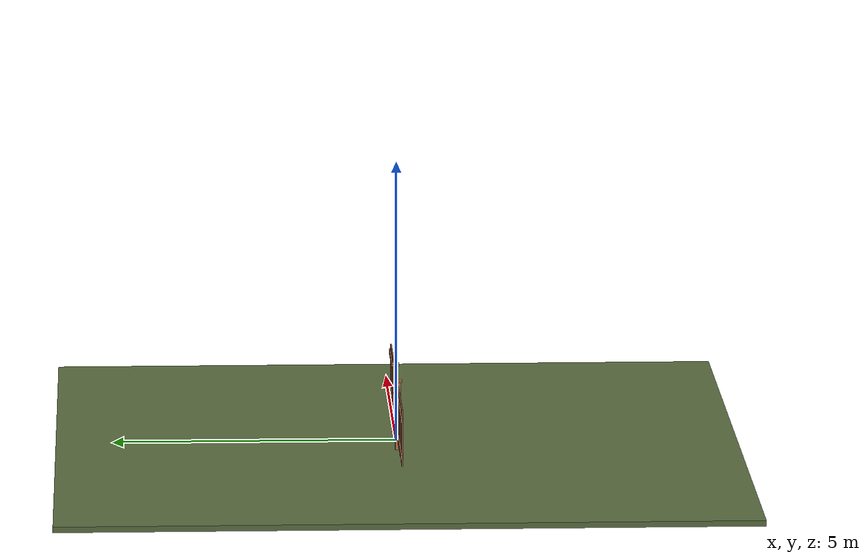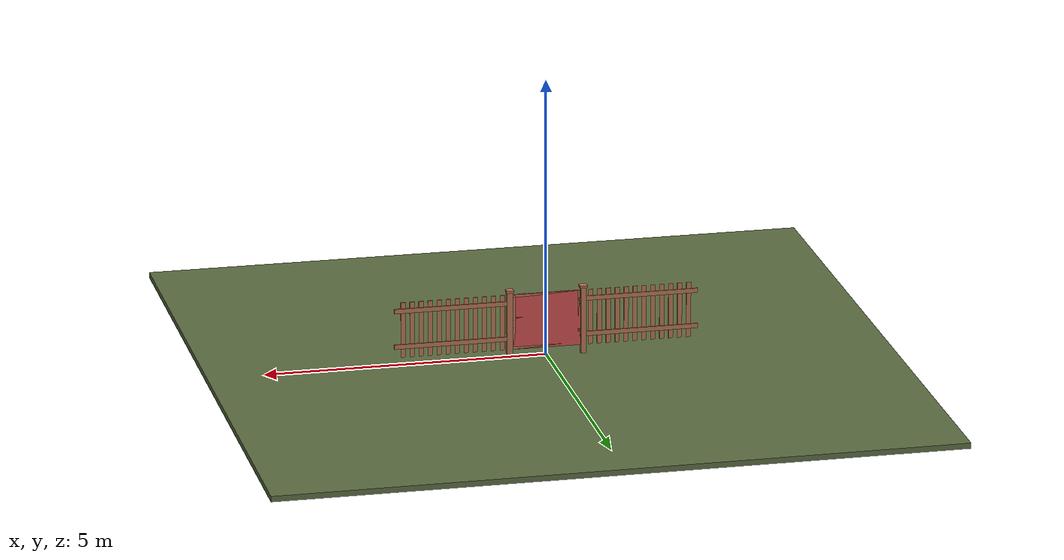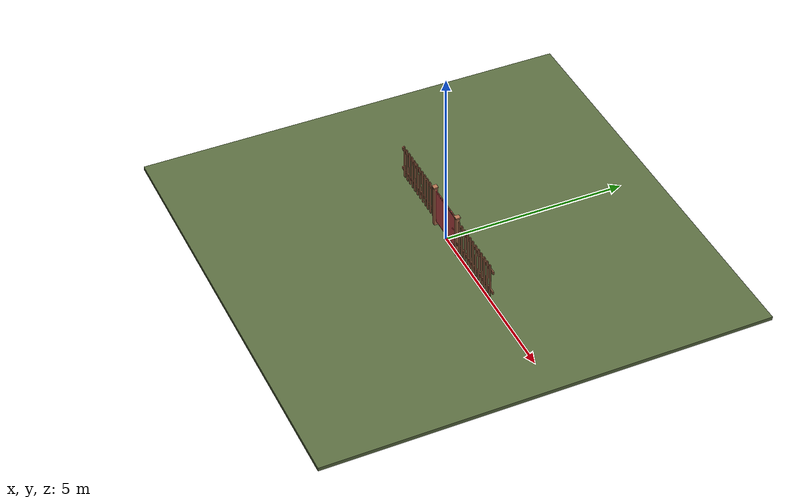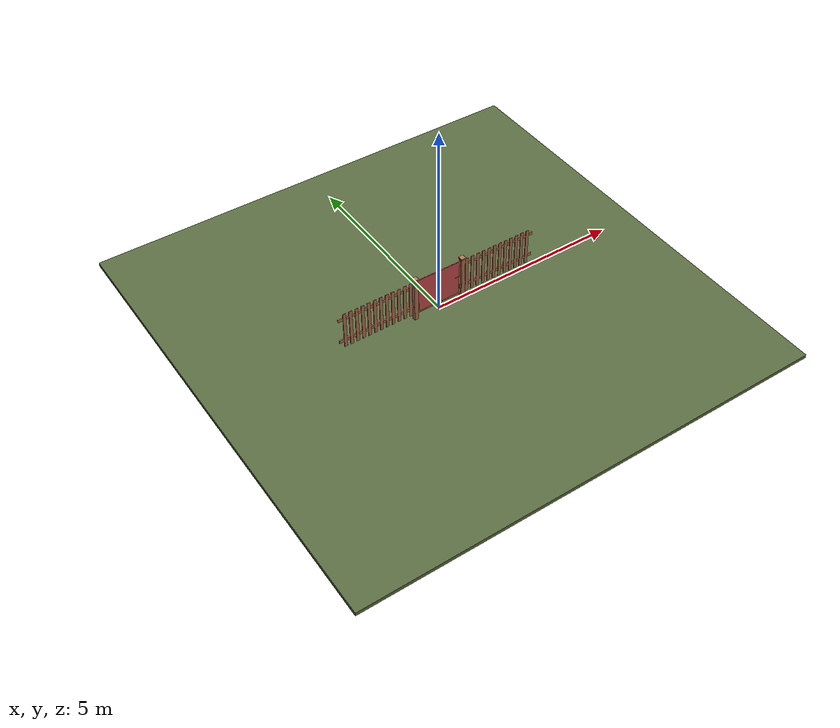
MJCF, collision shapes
<?xml version="1.0" ?>
<mujoco model="db0742_gate_swing_full">
  <compiler angle="radian" meshdir="../../hardware" texturedir="../../textures" autolimits="true" inertiafromgeom="false"/>
  <option timestep="0.002" integrator="implicitfast" cone="elliptic" impratio="10" noslip_iterations="3">
    <flag multiccd="enable"/>
  </option>
  <size memory="16M"/>
  <default>
    <geom condim="4" solref="0.005 1" solimp="0.95 0.99 0.001"/>
    <joint solreflimit="0.005 1" solimplimit="0.95 0.99 0.001"/>
    <tendon solreflimit="0.005 1"/>
    <equality solref="0.002 1"/>
  </default>
  <visual>
    <headlight ambient="0.4 0.4 0.4" diffuse="0.7 0.7 0.7" specular="0.2 0.2 0.2"/>
    <quality shadowsize="4096"/>
    <map znear="0.01" zfar="60"/>
  </visual>
  <asset>
    <mesh name="hinge_b433cbce2b" file="hinge_b433cbce2b.obj"/>
    <mesh name="hinge_jamb_c00731b0bd" file="hinge_jamb_c00731b0bd.obj"/>
    <mesh name="ring_cc5c941a8a" file="ring_cc5c941a8a.obj"/>
    <material name="mat_floor" rgba="0.35 0.42 0.25 1" specular="0.2" shininess="0.15" reflectance="0"/>
    <material name="mat_wall" rgba="0.78 0.76 0.7 1" specular="0.2" shininess="0.1" reflectance="0"/>
    <material name="mat_leaf" rgba="0.7 0.45 0.32 1" specular="0.2" shininess="0.4" reflectance="0"/>
    <material name="mat_hinge" rgba="0.45 0.3 0.22 1" specular="0.5" shininess="0.1" reflectance="0.2"/>
    <material name="mat_op_wrought_iron" rgba="0.08 0.08 0.09 1" specular="0.56" shininess="0.25" reflectance="0.24"/>
    <material name="mat_frame" rgba="0.7 0.45 0.32 1" specular="0.2" shininess="0.4" reflectance="0"/>
    <material name="mat_fence" rgba="0.7 0.45 0.32 1" specular="0.2" shininess="0.4" reflectance="0"/>
    <texture name="skybox" type="skybox" builtin="gradient" rgb1="0.6 0.7 0.85" rgb2="0.9 0.92 0.95" width="256" height="256"/>
  </asset>
  <worldbody>
    <light name="sun" pos="1.5 -2.5 4" dir="-0.3 0.5 -0.8" directional="true" diffuse="0.8 0.8 0.8" specular="0.3 0.3 0.3" castshadow="true"/>
    <light name="fill" pos="-1.5 2.5 3" dir="0.3 -0.5 -0.7" directional="true" diffuse="0.35 0.35 0.4" castshadow="false"/>
    <camera name="robot_view" pos="0 -1.875 1.035" xyaxes="1 0 0 0 0.26963 0.962964" fovy="52"/>
    <camera name="far_view" pos="0 1.875 1.035" xyaxes="-1 0 0 0 -0.26963 0.962964" fovy="52"/>
    <camera name="iso" pos="1.425 -1.575 1.335" xyaxes="0.741536 0.670913 0 -0.242917 0.268487 0.932151" fovy="46"/>
    <camera name="detail_handle" pos="0.672 -0.8445 1.02" xyaxes="0.97561 0.219512 0 -0.070934 0.315262 0.94635" fovy="38"/>
    <geom name="floor" type="box" size="6 6 0.05" pos="0 0 -0.05" material="mat_floor" group="0" contype="1" conaffinity="1" friction="0.8 0.005 0.0001" density="2400"/>
    <geom name="hinge_0_jamb" type="mesh" mesh="hinge_jamb_c00731b0bd" pos="-0.603 0.05 0.4" quat="0 1 0 0" material="mat_hinge" group="1" contype="0" conaffinity="0" density="7850"/>
    <geom name="hinge_0_jamb_lug" type="box" size="0.01 0.01575 0.02" pos="-0.603 0.03025 0.32956" material="mat_hinge" group="1" contype="0" conaffinity="0" density="7850"/>
    <geom name="hinge_1_jamb" type="mesh" mesh="hinge_jamb_c00731b0bd" pos="-0.603 0.05 0.97" quat="0 1 0 0" material="mat_hinge" group="1" contype="0" conaffinity="0" density="7850"/>
    <geom name="hinge_1_jamb_lug" type="box" size="0.01 0.01575 0.02" pos="-0.603 0.03025 0.89956" material="mat_hinge" group="1" contype="0" conaffinity="0" density="7850"/>
    <geom name="post_hinge" type="box" size="0.05 0.05 0.6" pos="-0.656 0 0.6" material="mat_frame" group="0" contype="1" conaffinity="1" friction="0.6 0.005 0.0001" density="350"/>
    <geom name="post_hinge_cap" type="box" size="0.065 0.065 0.02" pos="-0.656 0 1.22" material="mat_frame" group="1" contype="0" conaffinity="0" density="350"/>
    <geom name="post_latch" type="box" size="0.05 0.05 0.6" pos="0.656 0 0.6" material="mat_frame" group="0" contype="1" conaffinity="1" friction="0.6 0.005 0.0001" density="350"/>
    <geom name="post_latch_cap" type="box" size="0.065 0.065 0.02" pos="0.656 0 1.22" material="mat_frame" group="1" contype="0" conaffinity="0" density="350"/>
    <geom name="gate_stop" type="box" size="0.02 0.012 0.06" pos="0.586 -0.0245 0.4" material="mat_frame" group="0" contype="1" conaffinity="1" friction="0.6 0.005 0.0001" density="350"/>
    <geom name="fence_picket_l_0" type="box" size="0.04 0.01 0.5" pos="-0.786 0 0.65" material="mat_fence" group="0" contype="1" conaffinity="1" friction="0.6 0.005 0.0001" density="400"/>
    <geom name="fence_picket_l_1" type="box" size="0.04 0.01 0.5" pos="-0.946 0 0.65" material="mat_fence" group="0" contype="1" conaffinity="1" friction="0.6 0.005 0.0001" density="400"/>
    <geom name="fence_picket_l_2" type="box" size="0.04 0.01 0.5" pos="-1.106 0 0.65" material="mat_fence" group="0" contype="1" conaffinity="1" friction="0.6 0.005 0.0001" density="400"/>
    <geom name="fence_picket_l_3" type="box" size="0.04 0.01 0.5" pos="-1.266 0 0.65" material="mat_fence" group="0" contype="1" conaffinity="1" friction="0.6 0.005 0.0001" density="400"/>
    <geom name="fence_picket_l_4" type="box" size="0.04 0.01 0.5" pos="-1.426 0 0.65" material="mat_fence" group="0" contype="1" conaffinity="1" friction="0.6 0.005 0.0001" density="400"/>
    <geom name="fence_picket_l_5" type="box" size="0.04 0.01 0.5" pos="-1.586 0 0.65" material="mat_fence" group="0" contype="1" conaffinity="1" friction="0.6 0.005 0.0001" density="400"/>
    <geom name="fence_picket_l_6" type="box" size="0.04 0.01 0.5" pos="-1.746 0 0.65" material="mat_fence" group="0" contype="1" conaffinity="1" friction="0.6 0.005 0.0001" density="400"/>
    <geom name="fence_picket_l_7" type="box" size="0.04 0.01 0.5" pos="-1.906 0 0.65" material="mat_fence" group="0" contype="1" conaffinity="1" friction="0.6 0.005 0.0001" density="400"/>
    <geom name="fence_picket_l_8" type="box" size="0.04 0.01 0.5" pos="-2.066 0 0.65" material="mat_fence" group="0" contype="1" conaffinity="1" friction="0.6 0.005 0.0001" density="400"/>
    <geom name="fence_picket_l_9" type="box" size="0.04 0.01 0.5" pos="-2.226 0 0.65" material="mat_fence" group="0" contype="1" conaffinity="1" friction="0.6 0.005 0.0001" density="400"/>
    <geom name="fence_picket_l_10" type="box" size="0.04 0.01 0.5" pos="-2.386 0 0.65" material="mat_fence" group="0" contype="1" conaffinity="1" friction="0.6 0.005 0.0001" density="400"/>
    <geom name="fence_picket_l_11" type="box" size="0.04 0.01 0.5" pos="-2.546 0 0.65" material="mat_fence" group="0" contype="1" conaffinity="1" friction="0.6 0.005 0.0001" density="400"/>
    <geom name="fence_rail_l" type="box" size="1 0.015 0.04" pos="-1.706 0.015 1" material="mat_fence" group="0" contype="1" conaffinity="1" friction="0.6 0.005 0.0001" density="400"/>
    <geom name="fence_rail_b_l" type="box" size="1 0.015 0.04" pos="-1.706 0.015 0.35" material="mat_fence" group="0" contype="1" conaffinity="1" friction="0.6 0.005 0.0001" density="400"/>
    <geom name="fence_picket_r_0" type="box" size="0.04 0.01 0.5" pos="0.786 0 0.65" material="mat_fence" group="0" contype="1" conaffinity="1" friction="0.6 0.005 0.0001" density="400"/>
    <geom name="fence_picket_r_1" type="box" size="0.04 0.01 0.5" pos="0.946 0 0.65" material="mat_fence" group="0" contype="1" conaffinity="1" friction="0.6 0.005 0.0001" density="400"/>
    <geom name="fence_picket_r_2" type="box" size="0.04 0.01 0.5" pos="1.106 0 0.65" material="mat_fence" group="0" contype="1" conaffinity="1" friction="0.6 0.005 0.0001" density="400"/>
    <geom name="fence_picket_r_3" type="box" size="0.04 0.01 0.5" pos="1.266 0 0.65" material="mat_fence" group="0" contype="1" conaffinity="1" friction="0.6 0.005 0.0001" density="400"/>
    <geom name="fence_picket_r_4" type="box" size="0.04 0.01 0.5" pos="1.426 0 0.65" material="mat_fence" group="0" contype="1" conaffinity="1" friction="0.6 0.005 0.0001" density="400"/>
    <geom name="fence_picket_r_5" type="box" size="0.04 0.01 0.5" pos="1.586 0 0.65" material="mat_fence" group="0" contype="1" conaffinity="1" friction="0.6 0.005 0.0001" density="400"/>
    <geom name="fence_picket_r_6" type="box" size="0.04 0.01 0.5" pos="1.746 0 0.65" material="mat_fence" group="0" contype="1" conaffinity="1" friction="0.6 0.005 0.0001" density="400"/>
    <geom name="fence_picket_r_7" type="box" size="0.04 0.01 0.5" pos="1.906 0 0.65" material="mat_fence" group="0" contype="1" conaffinity="1" friction="0.6 0.005 0.0001" density="400"/>
    <geom name="fence_picket_r_8" type="box" size="0.04 0.01 0.5" pos="2.066 0 0.65" material="mat_fence" group="0" contype="1" conaffinity="1" friction="0.6 0.005 0.0001" density="400"/>
    <geom name="fence_picket_r_9" type="box" size="0.04 0.01 0.5" pos="2.226 0 0.65" material="mat_fence" group="0" contype="1" conaffinity="1" friction="0.6 0.005 0.0001" density="400"/>
    <geom name="fence_picket_r_10" type="box" size="0.04 0.01 0.5" pos="2.386 0 0.65" material="mat_fence" group="0" contype="1" conaffinity="1" friction="0.6 0.005 0.0001" density="400"/>
    <geom name="fence_picket_r_11" type="box" size="0.04 0.01 0.5" pos="2.546 0 0.65" material="mat_fence" group="0" contype="1" conaffinity="1" friction="0.6 0.005 0.0001" density="400"/>
    <geom name="fence_rail_r" type="box" size="1 0.015 0.04" pos="1.706 0.015 1" material="mat_fence" group="0" contype="1" conaffinity="1" friction="0.6 0.005 0.0001" density="400"/>
    <geom name="fence_rail_b_r" type="box" size="1 0.015 0.04" pos="1.706 0.015 0.35" material="mat_fence" group="0" contype="1" conaffinity="1" friction="0.6 0.005 0.0001" density="400"/>
    <geom name="gate_stop_strap_0" type="box" size="0.0705 0.01405 0.048" pos="0.676 -0.02005 0.4" material="mat_frame" group="1" contype="0" conaffinity="0" density="7850"/>
    <site name="approach_point" pos="0 -1.5 0" quat="1 0 0 0" size="0.05" rgba="0.2 0.9 0.2 0.5" group="4"/>
    <site name="goal_point" pos="0 1.5 0" quat="1 0 0 0" size="0.05" rgba="0.2 0.9 0.2 0.5" group="4"/>
    <site name="door_plane_center" pos="0 0 0.51" quat="1 0 0 0" size="0.02" rgba="0.2 0.9 0.2 0.5" group="4"/>
    <body name="leaf" pos="-0.606 0 0">
      <inertial pos="0.572659 0.003403 0.662759" mass="12.02" quat="0.706117 -0.708014 -0.001478 -0.010632" diaginertia="0.963160791 1.78930871 2.745924747"/>
      <joint name="leaf_hinge" type="hinge" axis="0 0 1" pos="0.003 0.05 0" limited="true" range="0 1.919862" damping="1.374492" frictionloss="5.913009" stiffness="5" springref="-1.537382" armature="0.02"/>
      <geom name="leaf_slab_col" type="box" size="0.6 0.0125 0.5" pos="0.603 0 0.65" material="mat_leaf" group="3" contype="1" conaffinity="1" rgba="0.8 0.3 0.3 0.25" friction="0.35 0.005 0.0001" density="1"/>
      <geom name="leaf_rail_b" type="box" size="0.6 0.0125 0.0225" pos="0.603 0 0.1725" material="mat_leaf" group="1" contype="0" conaffinity="0" density="1"/>
      <geom name="leaf_rail_t" type="box" size="0.6 0.0125 0.0225" pos="0.603 0 1.1275" material="mat_leaf" group="1" contype="0" conaffinity="0" density="1"/>
      <geom name="leaf_stile_h" type="box" size="0.0225 0.0125 0.5" pos="0.0255 0 0.65" material="mat_leaf" group="1" contype="0" conaffinity="0" density="1"/>
      <geom name="leaf_stile_l" type="box" size="0.0225 0.0125 0.5" pos="1.1805 0 0.65" material="mat_leaf" group="1" contype="0" conaffinity="0" density="1"/>
      <geom name="leaf_picket_0" type="box" size="0.02 0.00875 0.4865" pos="0.1035 0 0.67" material="mat_leaf" group="1" contype="0" conaffinity="0" density="1"/>
      <geom name="leaf_picket_1" type="box" size="0.02 0.00875 0.4865" pos="0.2145 0 0.67" material="mat_leaf" group="1" contype="0" conaffinity="0" density="1"/>
      <geom name="leaf_picket_2" type="box" size="0.02 0.00875 0.4865" pos="0.3255 0 0.67" material="mat_leaf" group="1" contype="0" conaffinity="0" density="1"/>
      <geom name="leaf_picket_3" type="box" size="0.02 0.00875 0.4865" pos="0.4365 0 0.67" material="mat_leaf" group="1" contype="0" conaffinity="0" density="1"/>
      <geom name="leaf_picket_4" type="box" size="0.02 0.00875 0.4865" pos="0.5475 0 0.67" material="mat_leaf" group="1" contype="0" conaffinity="0" density="1"/>
      <geom name="leaf_picket_5" type="box" size="0.02 0.00875 0.4865" pos="0.6585 0 0.67" material="mat_leaf" group="1" contype="0" conaffinity="0" density="1"/>
      <geom name="leaf_picket_6" type="box" size="0.02 0.00875 0.4865" pos="0.7695 0 0.67" material="mat_leaf" group="1" contype="0" conaffinity="0" density="1"/>
      <geom name="leaf_picket_7" type="box" size="0.02 0.00875 0.4865" pos="0.8805 0 0.67" material="mat_leaf" group="1" contype="0" conaffinity="0" density="1"/>
      <geom name="leaf_picket_8" type="box" size="0.02 0.00875 0.4865" pos="0.9915 0 0.67" material="mat_leaf" group="1" contype="0" conaffinity="0" density="1"/>
      <geom name="leaf_picket_9" type="box" size="0.02 0.00875 0.4865" pos="1.1025 0 0.67" material="mat_leaf" group="1" contype="0" conaffinity="0" density="1"/>
      <geom name="hinge_0" type="mesh" mesh="hinge_b433cbce2b" pos="0.003 0.05 0.4" quat="0 1 0 0" material="mat_hinge" group="1" contype="0" conaffinity="0" density="7850"/>
      <geom name="hinge_0_lug_foot" type="box" size="0.02 0.007563 0.0228" pos="0.025 0.020063 0.42508" material="mat_hinge" group="1" contype="0" conaffinity="0" density="7850"/>
      <geom name="hinge_0_lug" type="box" size="0.009 0.015187 0.0228" pos="0.006 0.040813 0.42508" material="mat_hinge" group="1" contype="0" conaffinity="0" density="7850"/>
      <geom name="hinge_1" type="mesh" mesh="hinge_b433cbce2b" pos="0.003 0.05 0.97" quat="0 1 0 0" material="mat_hinge" group="1" contype="0" conaffinity="0" density="7850"/>
      <geom name="hinge_1_lug_foot" type="box" size="0.02 0.007563 0.0228" pos="0.025 0.020063 0.99508" material="mat_hinge" group="1" contype="0" conaffinity="0" density="7850"/>
      <geom name="hinge_1_lug" type="box" size="0.009 0.015187 0.0228" pos="0.006 0.040813 0.99508" material="mat_hinge" group="1" contype="0" conaffinity="0" density="7850"/>
      <geom name="leaf_ring_pull_n" type="mesh" mesh="ring_cc5c941a8a" pos="1.098 -0.0125 0.8" quat="0.707107 0.707107 0 0" material="mat_op_wrought_iron" group="1" contype="0" conaffinity="0" density="3000"/>
      <geom name="leaf_ring_pull_col_n" type="capsule" size="0.008 0.05" pos="1.098 -0.0445 0.74" quat="0.707107 0 0.707107 0" material="mat_op_wrought_iron" group="3" contype="1" conaffinity="1" rgba="0.8 0.3 0.3 0.25" friction="0.7 0.01 0.0001" density="3000"/>
      <geom name="leaf_ring_pull_p" type="mesh" mesh="ring_cc5c941a8a" pos="1.098 0.0125 0.8" quat="-0.707107 0.707107 0 0" material="mat_op_wrought_iron" group="1" contype="0" conaffinity="0" density="3000"/>
      <geom name="leaf_ring_pull_col_p" type="capsule" size="0.008 0.05" pos="1.098 0.0445 0.74" quat="0.707107 0 0.707107 0" material="mat_op_wrought_iron" group="3" contype="1" conaffinity="1" rgba="0.8 0.3 0.3 0.25" friction="0.7 0.01 0.0001" density="3000"/>
      <site name="leaf_ring_pull_grip_n" pos="1.098 -0.0445 0.74" quat="1 0 0 0" size="0.012" rgba="0.2 0.9 0.2 0.5" group="4"/>
      <site name="leaf_ring_pull_grip_p" pos="1.098 0.0445 0.74" quat="1 0 0 0" size="0.012" rgba="0.2 0.9 0.2 0.5" group="4"/>
      <site name="leaf_edge_mid" pos="1.203 0 0.5" quat="1 0 0 0" size="0.02" rgba="0.2 0.9 0.2 0.5" group="4"/>
    </body>
  </worldbody>
  <sensor>
    <jointpos name="leaf_hinge_pos" joint="leaf_hinge"/>
    <jointvel name="leaf_hinge_vel" joint="leaf_hinge"/>
  </sensor>
</mujoco>
